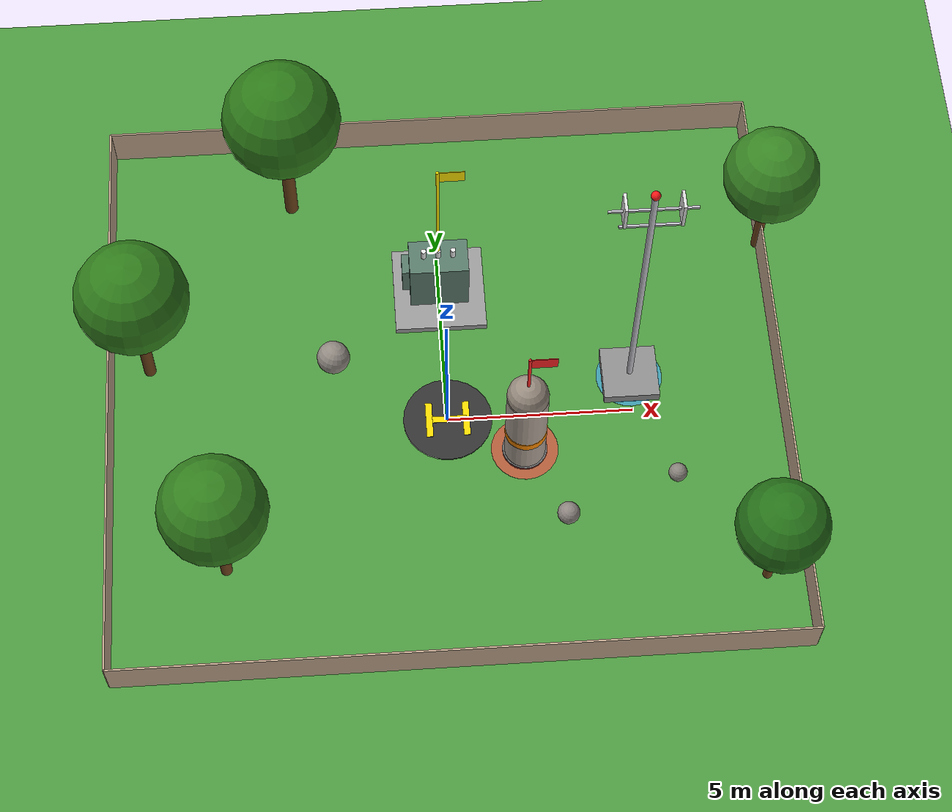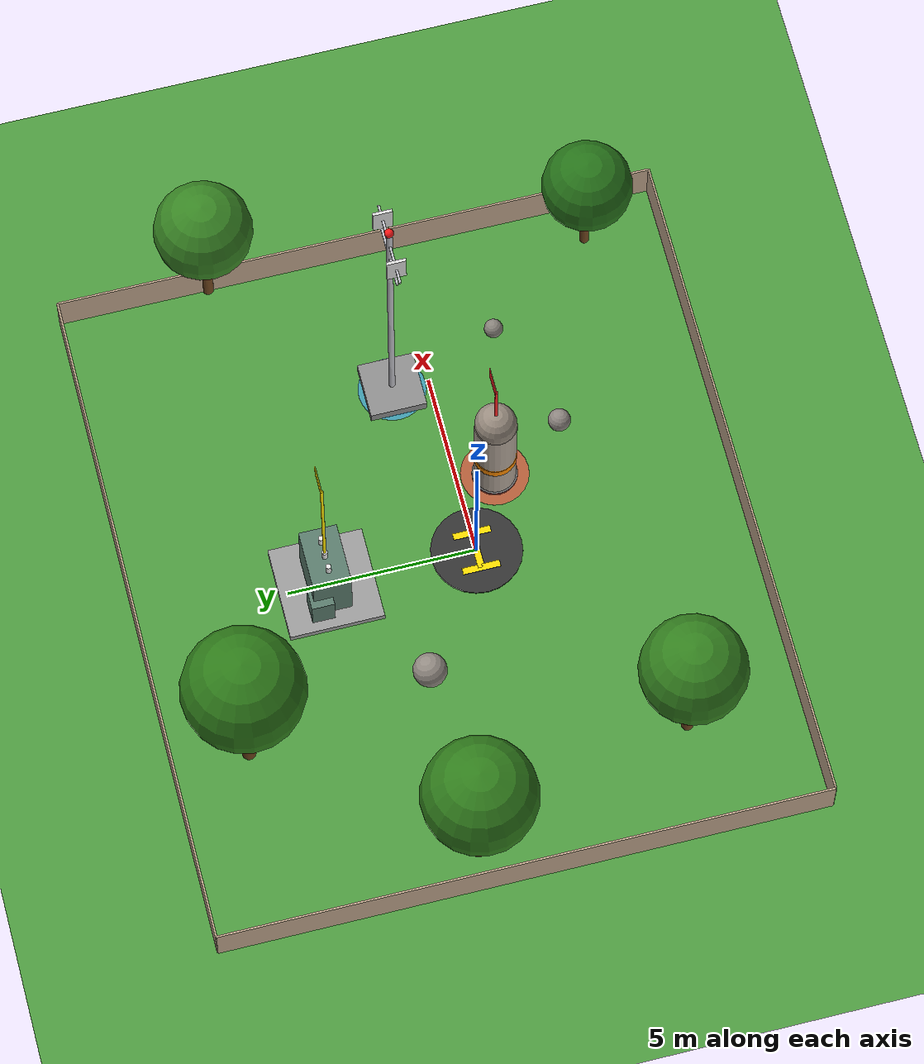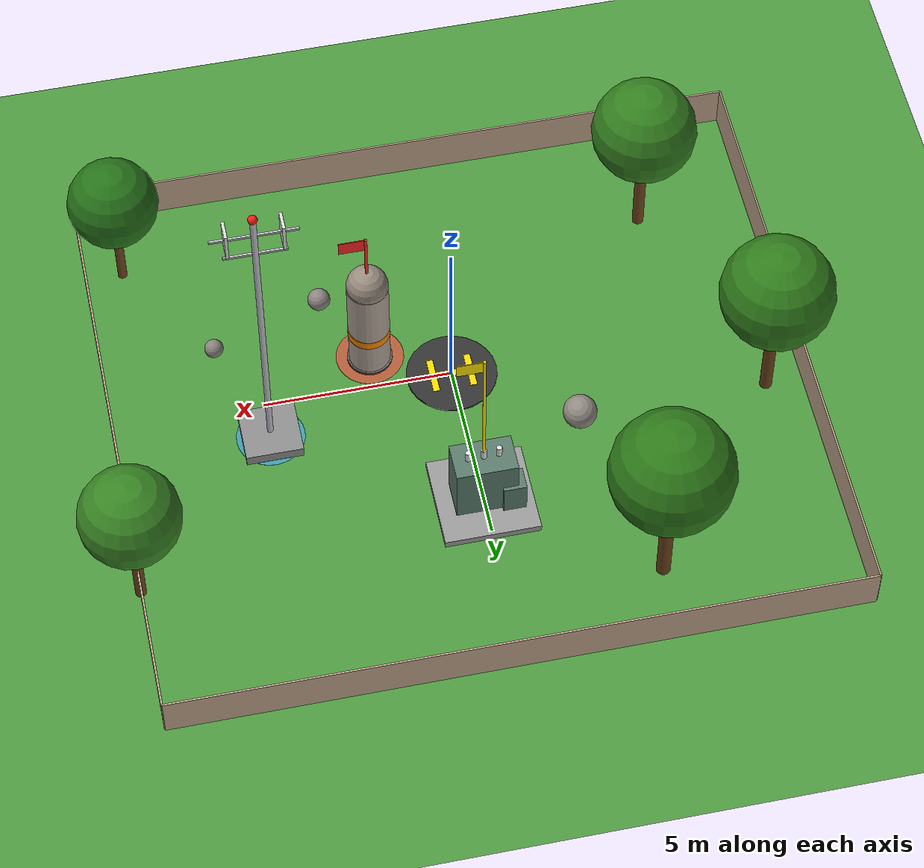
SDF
<sdf version="1.6">
<world name="drone_inspection_world">
<!--
 ═══════════════════════════════════════════
         PHYSICS & SCENE
    ═══════════════════════════════════════════
-->
<physics type="ode">
<real_time_update_rate>1000</real_time_update_rate>
<max_step_size>0.001</max_step_size>
<real_time_factor>1</real_time_factor>
</physics>
<scene>
<ambient>0.6 0.65 0.7 1</ambient>
<background>0.53 0.74 0.95 1</background>
<shadows>true</shadows>
<sky>
<clouds>
<speed>3</speed>
<humidity>0.6</humidity>
<mean_size>0.6</mean_size>
<ambient>0.8 0.85 0.9 1</ambient>
</clouds>
<time>10</time>
<sunrise>6</sunrise>
<sunset>20</sunset>
</sky>
<fog>
<color>0.8 0.85 0.9 1</color>
<type>linear</type>
<start>80</start>
<end>150</end>
<density>0.002</density>
</fog>
</scene>

<!--
 ═══════════════════════════════════════════
         LIGHTING
    ═══════════════════════════════════════════
-->
<light name="sun" type="directional">
<cast_shadows>true</cast_shadows>
<pose>0 0 100 0 0.3 0.8</pose>
<diffuse>1.0 0.95 0.85 1</diffuse>
<specular>0.4 0.4 0.3 1</specular>
<direction>-0.5 0.3 -0.8</direction>
<attenuation>
<range>1000</range>
<constant>0.9</constant>
<linear>0.01</linear>
<quadratic>0.001</quadratic>
</attenuation>
</light>

<light name="ambient_fill" type="directional">
<cast_shadows>false</cast_shadows>
<pose>0 0 50 0 0 0</pose>
<diffuse>0.4 0.5 0.6 1</diffuse>
<specular>0.1 0.1 0.1 1</specular>
<direction>0.5 -0.3 -0.6</direction>
</light>

<!--
 ═══════════════════════════════════════════
         GROUND PLANE  (textured grass)
    ═══════════════════════════════════════════
-->
<model name="ground_plane">
<static>true</static>
<link name="link">
<collision name="collision">
<geometry>
<plane>
<normal>0 0 1</normal>
<size>200 200</size>
</plane>
</geometry>
<surface>
<friction>
<ode>
<mu>100</mu>
<mu2>50</mu2>
</ode>
</friction>
</surface>
</collision>
<visual name="visual">
<cast_shadows>false</cast_shadows>
<geometry>
<plane>
<normal>0 0 1</normal>
<size>200 200</size>
</plane>
</geometry>
<material>
<script>
<uri>file://media/materials/scripts/gazebo.material</uri>
<name>Gazebo/Grass</name>
</script>
</material>
</visual>
</link>
</model>

<!--
 ═══════════════════════════════════════════
         HOME / LAUNCH PAD  (origin 0,0)
    ═══════════════════════════════════════════
-->
<!-- Launch pad base -->
<model name="launch_pad">
<static>true</static>
<pose>0 0 0.02 0 0 0</pose>
<link name="link">
<visual name="pad_visual">
<geometry>
<cylinder>
<radius>1.2</radius>
<length>0.04</length>
</cylinder>
</geometry>
<material>
<ambient>0.15 0.15 0.15 1</ambient>
<diffuse>0.2 0.2 0.2 1</diffuse>
<specular>0.3 0.3 0.3 1</specular>
</material>
</visual>
<collision name="pad_collision">
<geometry>
<cylinder>
<radius>1.2</radius>
<length>0.04</length>
</cylinder>
</geometry>
</collision>
</link>
</model>

<!-- Horizontal centre bar of H -->
<model name="pad_h_bar1">
<static>true</static>
<pose>0 0 0.045 0 0 0</pose>
<link name="link">
<visual name="v">
<geometry>
<box>
<!-- wide in X (connects the two legs), thin in Y -->
<size>1.0 0.18 0.01</size>
</box>
</geometry>
<material>
<ambient>1 0.8 0 1</ambient>
<diffuse>1 0.85 0 1</diffuse>
</material>
</visual>
</link>
</model>

<!-- Left vertical leg of H -->
<model name="pad_h_bar2">
<static>true</static>
<!-- shifted -0.5 in X, no rotation -->
<pose>-0.5 0 0.045 0 0 0</pose>
<link name="link">
<visual name="v">
<geometry>
<box>
<!-- thin in X, tall in Y -->
<size>0.18 1.0 0.01</size>
</box>
</geometry>
<material>
<ambient>1 0.8 0 1</ambient>
<diffuse>1 0.85 0 1</diffuse>
</material>
</visual>
</link>
</model>

<!-- Right vertical leg of H -->
<model name="pad_h_bar3">
<static>true</static>
<!-- shifted +0.5 in X, no rotation -->
<pose>0.5 0 0.045 0 0 0</pose>
<link name="link">
<visual name="v">
<geometry>
<box>
<!-- thin in X, tall in Y -->
<size>0.18 1.0 0.01</size>
</box>
</geometry>
<material>
<ambient>1 0.8 0 1</ambient>
<diffuse>1 0.85 0 1</diffuse>
</material>
</visual>
</link>
</model>

<!--
 ═══════════════════════════════════════════
         HOTSPOT 1  →  (2, -1)
         Industrial tank / storage silo
    ═══════════════════════════════════════════
-->
<model name="hotspot1_base">
<static>true</static>
<pose>2.0 -1.0 0 0 0 0</pose>
<link name="link">
<visual name="v">
<geometry>
<cylinder>
<radius>0.6</radius>
<length>0.1</length>
</cylinder>
</geometry>
<material>
<ambient>0.3 0.3 0.3 1</ambient>
<diffuse>0.4 0.4 0.4 1</diffuse>
</material>
</visual>
<collision name="c">
<geometry>
<cylinder>
<radius>0.6</radius>
<length>0.1</length>
</cylinder>
</geometry>
</collision>
</link>
</model>

<model name="hotspot1_tank">
<static>true</static>
<pose>2.0 -1.0 1.5 0 0 0</pose>
<link name="link">
<visual name="v">
<geometry>
<cylinder>
<radius>0.55</radius>
<length>3.0</length>
</cylinder>
</geometry>
<material>
<ambient>0.6 0.55 0.5 1</ambient>
<diffuse>0.7 0.65 0.6 1</diffuse>
<specular>0.5 0.5 0.5 1</specular>
</material>
</visual>
<collision name="c">
<geometry>
<cylinder>
<radius>0.55</radius>
<length>3.0</length>
</cylinder>
</geometry>
</collision>
</link>
</model>

<model name="hotspot1_dome">
<static>true</static>
<pose>2.0 -1.0 3.1 0 0 0</pose>
<link name="link">
<visual name="v">
<geometry>
<sphere>
<radius>0.55</radius>
</sphere>
</geometry>
<material>
<ambient>0.5 0.45 0.4 1</ambient>
<diffuse>0.6 0.55 0.5 1</diffuse>
</material>
</visual>
</link>
</model>

<!-- Warning stripe ring on tank -->
<model name="hotspot1_stripe">
<static>true</static>
<pose>2.0 -1.0 1.2 0 0 0</pose>
<link name="link">
<visual name="v">
<geometry>
<cylinder>
<radius>0.56</radius>
<length>0.25</length>
</cylinder>
</geometry>
<material>
<ambient>1 0.5 0 1</ambient>
<diffuse>1 0.55 0 1</diffuse>
</material>
</visual>
</link>
</model>

<!-- Hotspot 1 marker pole -->
<model name="hotspot1_marker">
<static>true</static>
<pose>2.0 -1.0 2.5 0 0 0</pose>
<link name="link">
<visual name="v">
<geometry>
<cylinder>
<radius>0.04</radius>
<length>5.0</length>
</cylinder>
</geometry>
<material>
<ambient>1 0.1 0.1 1</ambient>
<diffuse>1 0.15 0.15 1</diffuse>
</material>
</visual>
</link>
</model>

<model name="hotspot1_flag">
<static>true</static>
<pose>2.35 -1.0 4.8 0 0 0</pose>
<link name="link">
<visual name="v">
<geometry>
<box>
<size>0.7 0.02 0.4</size>
</box>
</geometry>
<material>
<ambient>1 0.1 0.1 1</ambient>
<diffuse>1 0.15 0.15 1</diffuse>
</material>
</visual>
</link>
</model>

<!--
 ═══════════════════════════════════════════
         HOTSPOT 2  →  (0, 4)
         Electrical substation / transformer box
    ═══════════════════════════════════════════
-->
<model name="hotspot2_platform">
<static>true</static>
<pose>0.0 4.0 0.1 0 0 0</pose>
<link name="link">
<visual name="v">
<geometry>
<box>
<size>2.5 2.5 0.2</size>
</box>
</geometry>
<material>
<ambient>0.5 0.5 0.5 1</ambient>
<diffuse>0.6 0.6 0.6 1</diffuse>
</material>
</visual>
<collision name="c">
<geometry>
<box>
<size>2.5 2.5 0.2</size>
</box>
</geometry>
</collision>
</link>
</model>

<model name="hotspot2_box_main">
<static>true</static>
<pose>0.0 4.0 1.0 0 0 0</pose>
<link name="link">
<visual name="v">
<geometry>
<box>
<size>1.6 1.0 1.8</size>
</box>
</geometry>
<material>
<ambient>0.3 0.4 0.35 1</ambient>
<diffuse>0.35 0.48 0.42 1</diffuse>
<specular>0.2 0.2 0.2 1</specular>
</material>
</visual>
<collision name="c">
<geometry>
<box>
<size>1.6 1.0 1.8</size>
</box>
</geometry>
</collision>
</link>
</model>

<model name="hotspot2_box_small">
<static>true</static>
<pose>-0.7 4.3 0.55 0 0 0</pose>
<link name="link">
<visual name="v">
<geometry>
<box>
<size>0.6 0.6 1.1</size>
</box>
</geometry>
<material>
<ambient>0.3 0.4 0.35 1</ambient>
<diffuse>0.35 0.48 0.42 1</diffuse>
</material>
</visual>
<collision name="c">
<geometry>
<box>
<size>0.6 0.6 1.1</size>
</box>
</geometry>
</collision>
</link>
</model>

<!-- Insulators on top -->
<model name="hotspot2_insulator1">
<static>true</static>
<pose>-0.4 4.0 2.05 0 0 0</pose>
<link name="link">
<visual name="v">
<geometry>
<cylinder>
<radius>0.07</radius>
<length>0.3</length>
</cylinder>
</geometry>
<material>
<ambient>0.85 0.85 0.85 1</ambient>
<diffuse>0.9 0.9 0.9 1</diffuse>
</material>
</visual>
</link>
</model>

<model name="hotspot2_insulator2">
<static>true</static>
<pose>0.0 4.0 2.05 0 0 0</pose>
<link name="link">
<visual name="v">
<geometry>
<cylinder>
<radius>0.07</radius>
<length>0.3</length>
</cylinder>
</geometry>
<material>
<ambient>0.85 0.85 0.85 1</ambient>
<diffuse>0.9 0.9 0.9 1</diffuse>
</material>
</visual>
</link>
</model>

<model name="hotspot2_insulator3">
<static>true</static>
<pose>0.4 4.0 2.05 0 0 0</pose>
<link name="link">
<visual name="v">
<geometry>
<cylinder>
<radius>0.07</radius>
<length>0.3</length>
</cylinder>
</geometry>
<material>
<ambient>0.85 0.85 0.85 1</ambient>
<diffuse>0.9 0.9 0.9 1</diffuse>
</material>
</visual>
</link>
</model>

<!-- Caution marker pole -->
<model name="hotspot2_marker">
<static>true</static>
<pose>0.0 4.0 3.0 0 0 0</pose>
<link name="link">
<visual name="v">
<geometry>
<cylinder>
<radius>0.04</radius>
<length>6.0</length>
</cylinder>
</geometry>
<material>
<ambient>1 0.85 0 1</ambient>
<diffuse>1 0.9 0 1</diffuse>
</material>
</visual>
</link>
</model>

<model name="hotspot2_flag">
<static>true</static>
<pose>0.35 4.0 5.8 0 0 0</pose>
<link name="link">
<visual name="v">
<geometry>
<box>
<size>0.7 0.02 0.4</size>
</box>
</geometry>
<material>
<ambient>1 0.85 0 1</ambient>
<diffuse>1 0.9 0 1</diffuse>
</material>
</visual>
</link>
</model>

<!--
 ═══════════════════════════════════════════
         HOTSPOT 3  →  (5, 1)
         Cell tower / antenna mast
    ═══════════════════════════════════════════
-->
<model name="hotspot3_base_slab">
<static>true</static>
<pose>5.0 1.0 0.15 0 0 0</pose>
<link name="link">
<visual name="v">
<geometry>
<box>
<size>1.5 1.5 0.3</size>
</box>
</geometry>
<material>
<ambient>0.5 0.5 0.5 1</ambient>
<diffuse>0.55 0.55 0.55 1</diffuse>
</material>
</visual>
<collision name="c">
<geometry>
<box>
<size>1.5 1.5 0.3</size>
</box>
</geometry>
</collision>
</link>
</model>

<model name="hotspot3_mast">
<static>true</static>
<pose>5.0 1.0 4.5 0 0 0</pose>
<link name="link">
<visual name="v">
<geometry>
<cylinder>
<radius>0.08</radius>
<length>9.0</length>
</cylinder>
</geometry>
<material>
<ambient>0.7 0.7 0.72 1</ambient>
<diffuse>0.75 0.75 0.78 1</diffuse>
<specular>0.6 0.6 0.6 1</specular>
</material>
</visual>
<collision name="c">
<geometry>
<cylinder>
<radius>0.08</radius>
<length>9.0</length>
</cylinder>
</geometry>
</collision>
</link>
</model>

<!-- Cross arms at top -->
<model name="hotspot3_arm1">
<static>true</static>
<pose>5.0 1.0 8.5 0 0 0</pose>
<link name="link">
<visual name="v">
<geometry>
<box>
<size>2.2 0.06 0.06</size>
</box>
</geometry>
<material>
<ambient>0.7 0.7 0.72 1</ambient>
<diffuse>0.75 0.75 0.78 1</diffuse>
</material>
</visual>
</link>
</model>

<model name="hotspot3_arm2">
<static>true</static>
<pose>5.0 1.0 7.8 0 0 0</pose>
<link name="link">
<visual name="v">
<geometry>
<box>
<size>1.6 0.06 0.06</size>
</box>
</geometry>
<material>
<ambient>0.7 0.7 0.72 1</ambient>
<diffuse>0.75 0.75 0.78 1</diffuse>
</material>
</visual>
</link>
</model>

<!-- Antenna dishes -->
<model name="hotspot3_dish1">
<static>true</static>
<pose>4.3 1.0 8.5 0 0 0</pose>
<link name="link">
<visual name="v">
<geometry>
<box>
<size>0.08 0.5 0.8</size>
</box>
</geometry>
<material>
<ambient>0.8 0.8 0.8 1</ambient>
<diffuse>0.85 0.85 0.85 1</diffuse>
</material>
</visual>
</link>
</model>

<model name="hotspot3_dish2">
<static>true</static>
<pose>5.7 1.0 8.5 0 0 0</pose>
<link name="link">
<visual name="v">
<geometry>
<box>
<size>0.08 0.5 0.8</size>
</box>
</geometry>
<material>
<ambient>0.8 0.8 0.8 1</ambient>
<diffuse>0.85 0.85 0.85 1</diffuse>
</material>
</visual>
</link>
</model>

<!-- Red aviation light on top -->
<model name="hotspot3_light">
<static>true</static>
<pose>5.0 1.0 9.1 0 0 0</pose>
<link name="link">
<visual name="v">
<geometry>
<sphere>
<radius>0.12</radius>
</sphere>
</geometry>
<material>
<ambient>1 0.1 0.1 1</ambient>
<diffuse>1 0.1 0.1 1</diffuse>
<emissive>0.9 0.05 0.05 1</emissive>
</material>
</visual>
</link>
</model>

<!--
 ═══════════════════════════════════════════
         ENVIRONMENT DETAIL: Trees
    ═══════════════════════════════════════════
-->
<model name="tree1">
<static>true</static>
<pose>-6 -4 0 0 0 0</pose>
<link name="trunk">
<visual name="v">
<geometry>
<cylinder>
<radius>0.15</radius>
<length>3.0</length>
</cylinder>
</geometry>
<pose>0 0 1.5 0 0 0</pose>
<material>
<ambient>0.4 0.25 0.1 1</ambient>
<diffuse>0.45 0.28 0.12 1</diffuse>
</material>
</visual>
<collision name="c">
<pose>0 0 1.5 0 0 0</pose>
<geometry>
<cylinder>
<radius>0.15</radius>
<length>3.0</length>
</cylinder>
</geometry>
</collision>
</link>
<link name="canopy">
<visual name="v">
<geometry>
<sphere>
<radius>1.4</radius>
</sphere>
</geometry>
<pose>0 0 3.8 0 0 0</pose>
<material>
<ambient>0.15 0.45 0.1 1</ambient>
<diffuse>0.2 0.5 0.12 1</diffuse>
</material>
</visual>
</link>
</model>

<model name="tree2">
<static>true</static>
<pose>8 -5 0 0 0 0.5</pose>
<link name="trunk">
<visual name="v">
<geometry>
<cylinder>
<radius>0.12</radius>
<length>2.5</length>
</cylinder>
</geometry>
<pose>0 0 1.25 0 0 0</pose>
<material>
<ambient>0.4 0.25 0.1 1</ambient>
<diffuse>0.45 0.28 0.12 1</diffuse>
</material>
</visual>
</link>
<link name="canopy">
<visual name="v">
<geometry>
<sphere>
<radius>1.2</radius>
</sphere>
</geometry>
<pose>0 0 3.1 0 0 0</pose>
<material>
<ambient>0.1 0.4 0.08 1</ambient>
<diffuse>0.15 0.45 0.1 1</diffuse>
</material>
</visual>
</link>
</model>

<model name="tree3">
<static>true</static>
<pose>-4 7 0 0 0 1.2</pose>
<link name="trunk">
<visual name="v">
<geometry>
<cylinder>
<radius>0.18</radius>
<length>3.5</length>
</cylinder>
</geometry>
<pose>0 0 1.75 0 0 0</pose>
<material>
<ambient>0.38 0.22 0.08 1</ambient>
<diffuse>0.42 0.26 0.1 1</diffuse>
</material>
</visual>
</link>
<link name="canopy">
<visual name="v">
<geometry>
<sphere>
<radius>1.6</radius>
</sphere>
</geometry>
<pose>0 0 4.4 0 0 0</pose>
<material>
<ambient>0.12 0.42 0.08 1</ambient>
<diffuse>0.18 0.48 0.1 1</diffuse>
</material>
</visual>
</link>
</model>

<model name="tree4">
<static>true</static>
<pose>9 5 0 0 0 0</pose>
<link name="trunk">
<visual name="v">
<geometry>
<cylinder>
<radius>0.14</radius>
<length>2.8</length>
</cylinder>
</geometry>
<pose>0 0 1.4 0 0 0</pose>
<material>
<ambient>0.4 0.25 0.1 1</ambient>
<diffuse>0.45 0.28 0.12 1</diffuse>
</material>
</visual>
</link>
<link name="canopy">
<visual name="v">
<geometry>
<sphere>
<radius>1.3</radius>
</sphere>
</geometry>
<pose>0 0 3.5 0 0 0</pose>
<material>
<ambient>0.18 0.48 0.12 1</ambient>
<diffuse>0.22 0.52 0.14 1</diffuse>
</material>
</visual>
</link>
</model>

<model name="tree5">
<static>true</static>
<pose>-8 2 0 0 0 2.1</pose>
<link name="trunk">
<visual name="v">
<geometry>
<cylinder>
<radius>0.16</radius>
<length>3.2</length>
</cylinder>
</geometry>
<pose>0 0 1.6 0 0 0</pose>
<material>
<ambient>0.38 0.22 0.08 1</ambient>
<diffuse>0.42 0.26 0.1 1</diffuse>
</material>
</visual>
</link>
<link name="canopy">
<visual name="v">
<geometry>
<sphere>
<radius>1.5</radius>
</sphere>
</geometry>
<pose>0 0 4.0 0 0 0</pose>
<material>
<ambient>0.14 0.44 0.09 1</ambient>
<diffuse>0.19 0.49 0.11 1</diffuse>
</material>
</visual>
</link>
</model>

<!--
 ═══════════════════════════════════════════
         ENVIRONMENT DETAIL: Rocks / Boulders
    ═══════════════════════════════════════════
-->
<model name="rock1">
<static>true</static>
<pose>3 -3 0.15 0.2 0.1 0.5</pose>
<link name="link">
<visual name="v">
<geometry>
<sphere>
<radius>0.3</radius>
</sphere>
</geometry>
<material>
<ambient>0.5 0.48 0.45 1</ambient>
<diffuse>0.55 0.52 0.5 1</diffuse>
</material>
</visual>
<collision name="c">
<geometry>
<sphere>
<radius>0.3</radius>
</sphere>
</geometry>
</collision>
</link>
</model>

<model name="rock2">
<static>true</static>
<pose>-3 2 0.2 0.1 0.3 1.1</pose>
<link name="link">
<visual name="v">
<geometry>
<sphere>
<radius>0.45</radius>
</sphere>
</geometry>
<material>
<ambient>0.52 0.5 0.46 1</ambient>
<diffuse>0.57 0.54 0.51 1</diffuse>
</material>
</visual>
<collision name="c">
<geometry>
<sphere>
<radius>0.45</radius>
</sphere>
</geometry>
</collision>
</link>
</model>

<model name="rock3">
<static>true</static>
<pose>6 -2 0.12 0.0 0.2 0.8</pose>
<link name="link">
<visual name="v">
<geometry>
<sphere>
<radius>0.25</radius>
</sphere>
</geometry>
<material>
<ambient>0.48 0.46 0.43 1</ambient>
<diffuse>0.53 0.51 0.48 1</diffuse>
</material>
</visual>
<collision name="c">
<geometry>
<sphere>
<radius>0.25</radius>
</sphere>
</geometry>
</collision>
</link>
</model>

<!--
 ═══════════════════════════════════════════
         PERIMETER FENCE
    ═══════════════════════════════════════════
-->
<!-- North fence -->
<model name="fence_north">
<static>true</static>
<pose>0 9 0.6 0 0 0</pose>
<link name="link">
<visual name="v">
<geometry>
<box>
<size>18 0.05 1.2</size>
</box>
</geometry>
<material>
<ambient>0.7 0.6 0.5 1</ambient>
<diffuse>0.75 0.65 0.55 1</diffuse>
</material>
</visual>
<collision name="c">
<geometry>
<box>
<size>18 0.05 1.2</size>
</box>
</geometry>
</collision>
</link>
</model>

<!-- South fence -->
<model name="fence_south">
<static>true</static>
<pose>0 -7 0.6 0 0 0</pose>
<link name="link">
<visual name="v">
<geometry>
<box>
<size>18 0.05 1.2</size>
</box>
</geometry>
<material>
<ambient>0.7 0.6 0.5 1</ambient>
<diffuse>0.75 0.65 0.55 1</diffuse>
</material>
</visual>
<collision name="c">
<geometry>
<box>
<size>18 0.05 1.2</size>
</box>
</geometry>
</collision>
</link>
</model>

<!-- East fence -->
<model name="fence_east">
<static>true</static>
<pose>9 1 0.6 0 0 1.5708</pose>
<link name="link">
<visual name="v">
<geometry>
<box>
<size>16 0.05 1.2</size>
</box>
</geometry>
<material>
<ambient>0.7 0.6 0.5 1</ambient>
<diffuse>0.75 0.65 0.55 1</diffuse>
</material>
</visual>
<collision name="c">
<geometry>
<box>
<size>16 0.05 1.2</size>
</box>
</geometry>
</collision>
</link>
</model>

<!-- West fence -->
<model name="fence_west">
<static>true</static>
<pose>-9 1 0.6 0 0 1.5708</pose>
<link name="link">
<visual name="v">
<geometry>
<box>
<size>16 0.05 1.2</size>
</box>
</geometry>
<material>
<ambient>0.7 0.6 0.5 1</ambient>
<diffuse>0.75 0.65 0.55 1</diffuse>
</material>
</visual>
<collision name="c">
<geometry>
<box>
<size>16 0.05 1.2</size>
</box>
</geometry>
</collision>
</link>
</model>

<!--
 ═══════════════════════════════════════════
         FLIGHT PATH GROUND MARKERS
    ═══════════════════════════════════════════
-->
<!-- WP1 ground ring -->
<model name="wp1_ground_ring">
<static>true</static>
<pose>2.0 -1.0 0.005 0 0 0</pose>
<link name="link">
<visual name="v">
<geometry>
<cylinder>
<radius>0.9</radius>
<length>0.01</length>
</cylinder>
</geometry>
<material>
<ambient>1 0.2 0.2 0.6</ambient>
<diffuse>1 0.25 0.25 0.6</diffuse>
</material>
</visual>
</link>
</model>

<!-- WP2 ground ring -->
<model name="wp2_ground_ring">
<static>true</static>
<pose>0.0 4.0 0.005 0 0 0</pose>
<link name="link">
<visual name="v">
<geometry>
<cylinder>
<radius>0.9</radius>
<length>0.01</length>
</cylinder>
</geometry>
<material>
<ambient>1 0.85 0 0.6</ambient>
<diffuse>1 0.9 0 0.6</diffuse>
</material>
</visual>
</link>
</model>

<!-- WP3 ground ring -->
<model name="wp3_ground_ring">
<static>true</static>
<pose>5.0 1.0 0.005 0 0 0</pose>
<link name="link">
<visual name="v">
<geometry>
<cylinder>
<radius>0.9</radius>
<length>0.01</length>
</cylinder>
</geometry>
<material>
<ambient>0.2 0.6 1 0.6</ambient>
<diffuse>0.25 0.65 1 0.6</diffuse>
</material>
</visual>
</link>
</model>

<!--
 ═══════════════════════════════════════════
         CAMERA
    ═══════════════════════════════════════════
-->
<gui fullscreen="0">
<camera name="user_camera">
<pose>-8 -8 12 0 0.55 0.8</pose>
<view_controller>orbit</view_controller>
</camera>
</gui>

</world>
</sdf>
